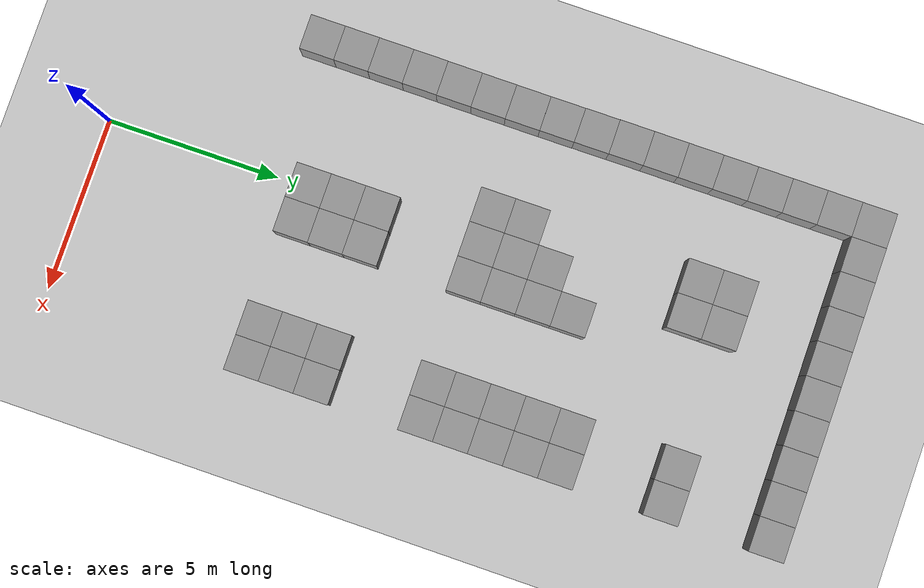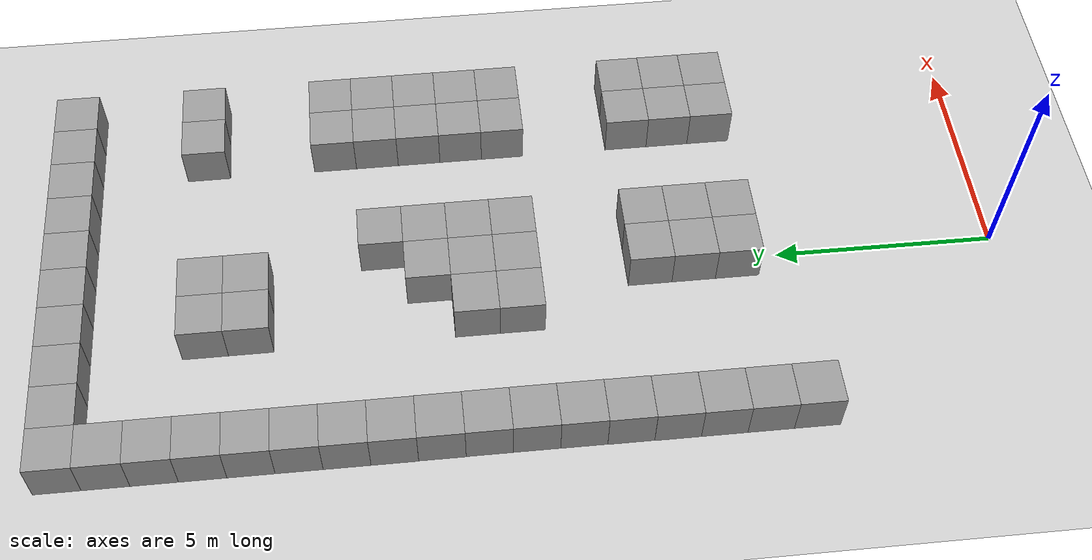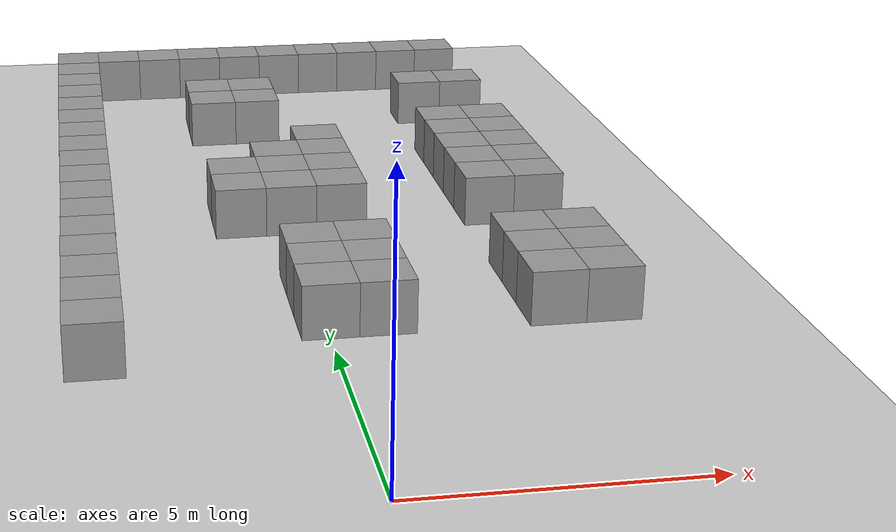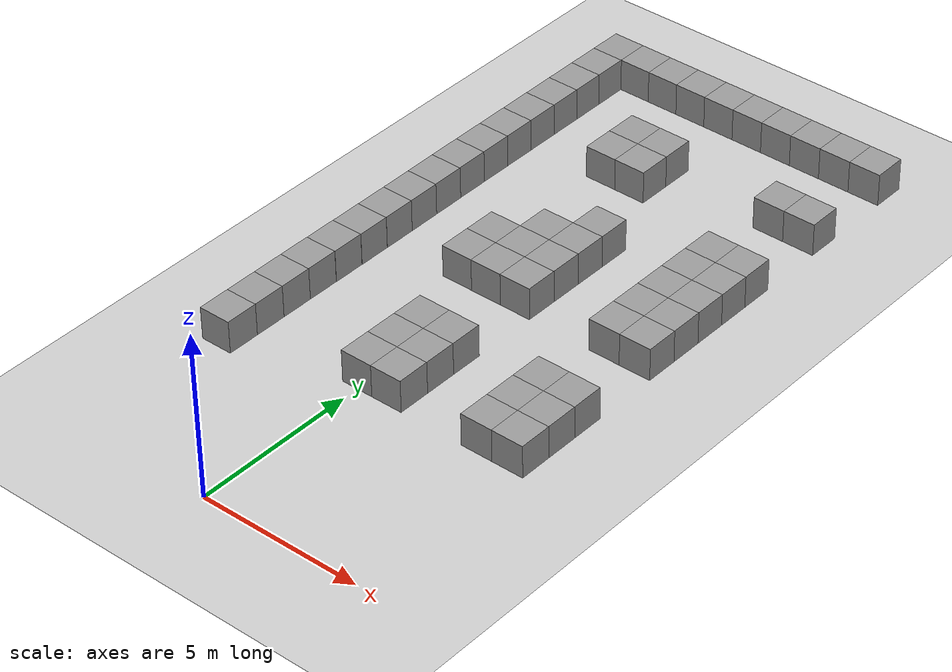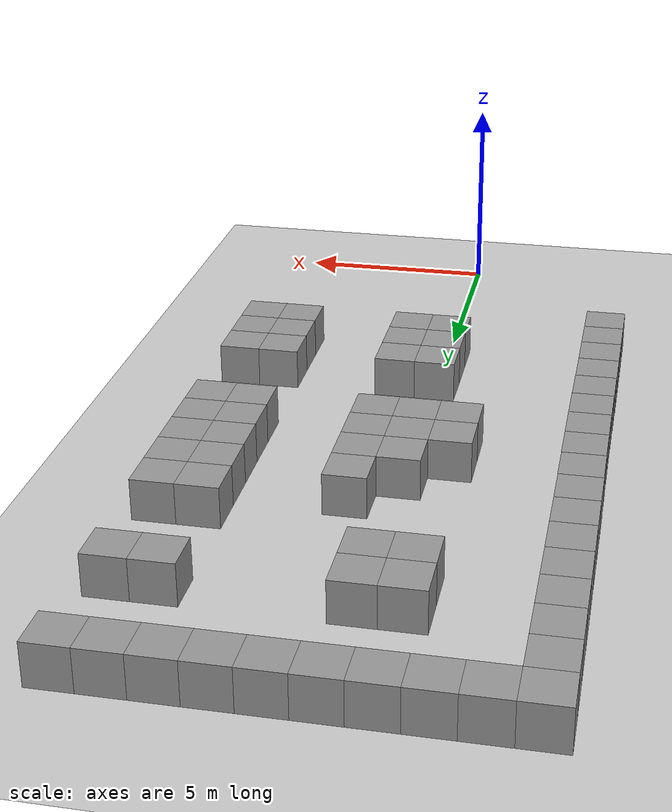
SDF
<sdf version="1.4">
 <world name="default">
  <model name="ground_plane">
   <static>1</static>
   <link name="link">
    <collision name="collision">
     <geometry><plane><normal>0 0 1</normal><size>100 100</size></plane></geometry>
     <surface><friction><ode><mu>100</mu><mu2>50</mu2></ode></friction></surface>
    </collision>
    <visual name="visual">
     <cast_shadows>0</cast_shadows>
     <geometry><plane><normal>0 0 1</normal><size>100 100</size></plane></geometry>
     <material>
      <script><uri>file://media/materials/scripts/gazebo.material</uri><name>Gazebo/Grey</name></script>
     </material>
    </visual>
    <velocity_decay><linear>0</linear><angular>0</angular></velocity_decay>
   </link>
  </model>
  <model name="unit_box_99">
   <pose>-4.00001 21 0.5 0 0 -1e-06</pose>
   <static>1</static>
   <link name="link">
    <inertial>
     <mass>1</mass>
     <inertia><ixx>1</ixx><ixy>0</ixy><ixz>0</ixz><iyy>1</iyy><iyz>0</iyz><izz>1</izz></inertia>
    </inertial>
    <collision name="collision"><geometry><box><size>1 1 1</size></box></geometry></collision>
    <visual name="visual">
     <geometry><box><size>1 1 1</size></box></geometry>
     <material>
      <script><uri>file://media/materials/scripts/gazebo.material</uri><name>Gazebo/Grey</name></script>
     </material>
    </visual>
    <velocity_decay><linear>0</linear><angular>0</angular></velocity_decay>
   </link>
   <static>1</static>
  </model>
  <model name="unit_box_100">
   <pose>-3.00001 21 0.5 0 0 -1e-06</pose>
   <static>1</static>
   <link name="link">
    <inertial>
     <mass>1</mass>
     <inertia><ixx>1</ixx><ixy>0</ixy><ixz>0</ixz><iyy>1</iyy><iyz>0</iyz><izz>1</izz></inertia>
    </inertial>
    <collision name="collision"><geometry><box><size>1 1 1</size></box></geometry></collision>
    <visual name="visual">
     <geometry><box><size>1 1 1</size></box></geometry>
     <material>
      <script><uri>file://media/materials/scripts/gazebo.material</uri><name>Gazebo/Grey</name></script>
     </material>
    </visual>
    <velocity_decay><linear>0</linear><angular>0</angular></velocity_decay>
   </link>
   <static>1</static>
  </model>
  <model name="unit_box_101">
   <pose>-2.00001 21 0.5 0 0 -1e-06</pose>
   <static>1</static>
   <link name="link">
    <inertial>
     <mass>1</mass>
     <inertia><ixx>1</ixx><ixy>0</ixy><ixz>0</ixz><iyy>1</iyy><iyz>0</iyz><izz>1</izz></inertia>
    </inertial>
    <collision name="collision"><geometry><box><size>1 1 1</size></box></geometry></collision>
    <visual name="visual">
     <geometry><box><size>1 1 1</size></box></geometry>
     <material>
      <script><uri>file://media/materials/scripts/gazebo.material</uri><name>Gazebo/Grey</name></script>
     </material>
    </visual>
    <velocity_decay><linear>0</linear><angular>0</angular></velocity_decay>
   </link>
   <static>1</static>
  </model>
  <model name="unit_box_102">
   <pose>-1.00001 21 0.5 0 -0 0</pose>
   <static>1</static>
   <link name="link">
    <inertial>
     <mass>1</mass>
     <inertia><ixx>1</ixx><ixy>0</ixy><ixz>0</ixz><iyy>1</iyy><iyz>0</iyz><izz>1</izz></inertia>
    </inertial>
    <collision name="collision"><geometry><box><size>1 1 1</size></box></geometry></collision>
    <visual name="visual">
     <geometry><box><size>1 1 1</size></box></geometry>
     <material>
      <script><uri>file://media/materials/scripts/gazebo.material</uri><name>Gazebo/Grey</name></script>
     </material>
    </visual>
    <velocity_decay><linear>0</linear><angular>0</angular></velocity_decay>
   </link>
   <static>1</static>
  </model>
  <model name="unit_box_103">
   <pose>-1e-05 21 0.5 0 -0 0</pose>
   <static>1</static>
   <link name="link">
    <inertial>
     <mass>1</mass>
     <inertia><ixx>1</ixx><ixy>0</ixy><ixz>0</ixz><iyy>1</iyy><iyz>0</iyz><izz>1</izz></inertia>
    </inertial>
    <collision name="collision"><geometry><box><size>1 1 1</size></box></geometry></collision>
    <visual name="visual">
     <geometry><box><size>1 1 1</size></box></geometry>
     <material>
      <script><uri>file://media/materials/scripts/gazebo.material</uri><name>Gazebo/Grey</name></script>
     </material>
    </visual>
    <velocity_decay><linear>0</linear><angular>0</angular></velocity_decay>
   </link>
   <static>1</static>
  </model>
  <model name="unit_box_104">
   <pose>0.999991 21 0.5 0 -0 0</pose>
   <static>1</static>
   <link name="link">
    <inertial>
     <mass>1</mass>
     <inertia><ixx>1</ixx><ixy>0</ixy><ixz>0</ixz><iyy>1</iyy><iyz>0</iyz><izz>1</izz></inertia>
    </inertial>
    <collision name="collision"><geometry><box><size>1 1 1</size></box></geometry></collision>
    <visual name="visual">
     <geometry><box><size>1 1 1</size></box></geometry>
     <material>
      <script><uri>file://media/materials/scripts/gazebo.material</uri><name>Gazebo/Grey</name></script>
     </material>
    </visual>
    <velocity_decay><linear>0</linear><angular>0</angular></velocity_decay>
   </link>
   <static>1</static>
  </model>
  <model name="unit_box_105">
   <pose>1.99999 21 0.5 0 -0 0</pose>
   <static>1</static>
   <link name="link">
    <inertial>
     <mass>1</mass>
     <inertia><ixx>1</ixx><ixy>0</ixy><ixz>0</ixz><iyy>1</iyy><iyz>0</iyz><izz>1</izz></inertia>
    </inertial>
    <collision name="collision"><geometry><box><size>1 1 1</size></box></geometry></collision>
    <visual name="visual">
     <geometry><box><size>1 1 1</size></box></geometry>
     <material>
      <script><uri>file://media/materials/scripts/gazebo.material</uri><name>Gazebo/Grey</name></script>
     </material>
    </visual>
    <velocity_decay><linear>0</linear><angular>0</angular></velocity_decay>
   </link>
   <static>1</static>
  </model>
  <model name="unit_box_106">
   <pose>2.99999 21 0.5 0 -0 1e-06</pose>
   <static>1</static>
   <link name="link">
    <inertial>
     <mass>1</mass>
     <inertia><ixx>1</ixx><ixy>0</ixy><ixz>0</ixz><iyy>1</iyy><iyz>0</iyz><izz>1</izz></inertia>
    </inertial>
    <collision name="collision"><geometry><box><size>1 1 1</size></box></geometry></collision>
    <visual name="visual">
     <geometry><box><size>1 1 1</size></box></geometry>
     <material>
      <script><uri>file://media/materials/scripts/gazebo.material</uri><name>Gazebo/Grey</name></script>
     </material>
    </visual>
    <velocity_decay><linear>0</linear><angular>0</angular></velocity_decay>
   </link>
   <static>1</static>
  </model>
  <model name="unit_box_107">
   <pose>3.99999 21 0.5 0 -0 2e-06</pose>
   <static>1</static>
   <link name="link">
    <inertial>
     <mass>1</mass>
     <inertia><ixx>1</ixx><ixy>0</ixy><ixz>0</ixz><iyy>1</iyy><iyz>0</iyz><izz>1</izz></inertia>
    </inertial>
    <collision name="collision"><geometry><box><size>1 1 1</size></box></geometry></collision>
    <visual name="visual">
     <geometry><box><size>1 1 1</size></box></geometry>
     <material>
      <script><uri>file://media/materials/scripts/gazebo.material</uri><name>Gazebo/Grey</name></script>
     </material>
    </visual>
    <velocity_decay><linear>0</linear><angular>0</angular></velocity_decay>
   </link>
   <static>1</static>
  </model>
  <model name="unit_box_108">
   <pose>5 21 0.5 0 -0 3e-06</pose>
   <static>1</static>
   <link name="link">
    <inertial>
     <mass>1</mass>
     <inertia><ixx>1</ixx><ixy>0</ixy><ixz>0</ixz><iyy>1</iyy><iyz>0</iyz><izz>1</izz></inertia>
    </inertial>
    <collision name="collision"><geometry><box><size>1 1 1</size></box></geometry></collision>
    <visual name="visual">
     <geometry><box><size>1 1 1</size></box></geometry>
     <material>
      <script><uri>file://media/materials/scripts/gazebo.material</uri><name>Gazebo/Grey</name></script>
     </material>
    </visual>
    <velocity_decay><linear>0</linear><angular>0</angular></velocity_decay>
   </link>
   <static>1</static>
  </model>
  <model name="unit_box_66_0">
   <pose>-4 5.00001 0.5 0 0 -3e-06</pose>
   <link name="link">
    <inertial>
     <mass>1</mass>
     <inertia><ixx>1</ixx><ixy>0</ixy><ixz>0</ixz><iyy>1</iyy><iyz>0</iyz><izz>1</izz></inertia>
    </inertial>
    <collision name="collision"><geometry><box><size>1 1 1</size></box></geometry></collision>
    <visual name="visual">
     <geometry><box><size>1 1 1</size></box></geometry>
     <material>
      <script><uri>file://media/materials/scripts/gazebo.material</uri><name>Gazebo/Grey</name></script>
     </material>
    </visual>
    <velocity_decay><linear>0</linear><angular>0</angular></velocity_decay>
   </link>
   <static>1</static>
  </model>
  <model name="unit_box_67_0">
   <pose>-3.99999 6.00001 0.5 0 0 -3e-06</pose>
   <link name="link">
    <inertial>
     <mass>1</mass>
     <inertia><ixx>1</ixx><ixy>0</ixy><ixz>0</ixz><iyy>1</iyy><iyz>0</iyz><izz>1</izz></inertia>
    </inertial>
    <collision name="collision"><geometry><box><size>1 1 1</size></box></geometry></collision>
    <visual name="visual">
     <geometry><box><size>1 1 1</size></box></geometry>
     <material>
      <script><uri>file://media/materials/scripts/gazebo.material</uri><name>Gazebo/Grey</name></script>
     </material>
    </visual>
    <velocity_decay><linear>0</linear><angular>0</angular></velocity_decay>
   </link>
   <static>1</static>
  </model>
  <model name="unit_box_68_0">
   <pose>-4 7.00001 0.5 0 0 -2e-06</pose>
   <link name="link">
    <inertial>
     <mass>1</mass>
     <inertia><ixx>1</ixx><ixy>0</ixy><ixz>0</ixz><iyy>1</iyy><iyz>0</iyz><izz>1</izz></inertia>
    </inertial>
    <collision name="collision"><geometry><box><size>1 1 1</size></box></geometry></collision>
    <visual name="visual">
     <geometry><box><size>1 1 1</size></box></geometry>
     <material>
      <script><uri>file://media/materials/scripts/gazebo.material</uri><name>Gazebo/Grey</name></script>
     </material>
    </visual>
    <velocity_decay><linear>0</linear><angular>0</angular></velocity_decay>
   </link>
   <static>1</static>
  </model>
  <model name="unit_box_69_0">
   <pose>-4 8.00001 0.5 0 0 -2e-06</pose>
   <link name="link">
    <inertial>
     <mass>1</mass>
     <inertia><ixx>1</ixx><ixy>0</ixy><ixz>0</ixz><iyy>1</iyy><iyz>0</iyz><izz>1</izz></inertia>
    </inertial>
    <collision name="collision"><geometry><box><size>1 1 1</size></box></geometry></collision>
    <visual name="visual">
     <geometry><box><size>1 1 1</size></box></geometry>
     <material>
      <script><uri>file://media/materials/scripts/gazebo.material</uri><name>Gazebo/Grey</name></script>
     </material>
    </visual>
    <velocity_decay><linear>0</linear><angular>0</angular></velocity_decay>
   </link>
   <static>1</static>
  </model>
  <model name="unit_box_73_0">
   <pose>-3.99993 14 0.5 0 0 -2e-06</pose>
   <link name="link">
    <inertial>
     <mass>1</mass>
     <inertia><ixx>1</ixx><ixy>0</ixy><ixz>0</ixz><iyy>1</iyy><iyz>0</iyz><izz>1</izz></inertia>
    </inertial>
    <collision name="collision"><geometry><box><size>1 1 1</size></box></geometry></collision>
    <visual name="visual">
     <geometry><box><size>1 1 1</size></box></geometry>
     <material>
      <script><uri>file://media/materials/scripts/gazebo.material</uri><name>Gazebo/Grey</name></script>
     </material>
    </visual>
    <velocity_decay><linear>0</linear><angular>0</angular></velocity_decay>
   </link>
   <static>1</static>
  </model>
  <model name="unit_box_74_0">
   <pose>-3.99993 15 0.5 0 0 -4e-06</pose>
   <link name="link">
    <inertial>
     <mass>1</mass>
     <inertia><ixx>1</ixx><ixy>0</ixy><ixz>0</ixz><iyy>1</iyy><iyz>0</iyz><izz>1</izz></inertia>
    </inertial>
    <collision name="collision"><geometry><box><size>1 1 1</size></box></geometry></collision>
    <visual name="visual">
     <geometry><box><size>1 1 1</size></box></geometry>
     <material>
      <script><uri>file://media/materials/scripts/gazebo.material</uri><name>Gazebo/Grey</name></script>
     </material>
    </visual>
    <velocity_decay><linear>0</linear><angular>0</angular></velocity_decay>
   </link>
   <static>1</static>
  </model>
  <model name="unit_box_75_0">
   <pose>-3.99999 16 0.5 0 0 -3e-06</pose>
   <link name="link">
    <inertial>
     <mass>1</mass>
     <inertia><ixx>1</ixx><ixy>0</ixy><ixz>0</ixz><iyy>1</iyy><iyz>0</iyz><izz>1</izz></inertia>
    </inertial>
    <collision name="collision"><geometry><box><size>1 1 1</size></box></geometry></collision>
    <visual name="visual">
     <geometry><box><size>1 1 1</size></box></geometry>
     <material>
      <script><uri>file://media/materials/scripts/gazebo.material</uri><name>Gazebo/Grey</name></script>
     </material>
    </visual>
    <velocity_decay><linear>0</linear><angular>0</angular></velocity_decay>
   </link>
   <static>1</static>
  </model>
  <model name="unit_box_76_0">
   <pose>-3.99995 17 0.5 0 0 -4e-06</pose>
   <link name="link">
    <inertial>
     <mass>1</mass>
     <inertia><ixx>1</ixx><ixy>0</ixy><ixz>0</ixz><iyy>1</iyy><iyz>0</iyz><izz>1</izz></inertia>
    </inertial>
    <collision name="collision"><geometry><box><size>1 1 1</size></box></geometry></collision>
    <visual name="visual">
     <geometry><box><size>1 1 1</size></box></geometry>
     <material>
      <script><uri>file://media/materials/scripts/gazebo.material</uri><name>Gazebo/Grey</name></script>
     </material>
    </visual>
    <velocity_decay><linear>0</linear><angular>0</angular></velocity_decay>
   </link>
   <static>1</static>
  </model>
  <model name="unit_box_77_0">
   <pose>-3.99995 18 0.5 0 0 -4e-06</pose>
   <link name="link">
    <inertial>
     <mass>1</mass>
     <inertia><ixx>1</ixx><ixy>0</ixy><ixz>0</ixz><iyy>1</iyy><iyz>0</iyz><izz>1</izz></inertia>
    </inertial>
    <collision name="collision"><geometry><box><size>1 1 1</size></box></geometry></collision>
    <visual name="visual">
     <geometry><box><size>1 1 1</size></box></geometry>
     <material>
      <script><uri>file://media/materials/scripts/gazebo.material</uri><name>Gazebo/Grey</name></script>
     </material>
    </visual>
    <velocity_decay><linear>0</linear><angular>0</angular></velocity_decay>
   </link>
   <static>1</static>
  </model>
  <model name="unit_box_78_0">
   <pose>-3.99992 19 0.5 0 0 -4e-06</pose>
   <link name="link">
    <inertial>
     <mass>1</mass>
     <inertia><ixx>1</ixx><ixy>0</ixy><ixz>0</ixz><iyy>1</iyy><iyz>0</iyz><izz>1</izz></inertia>
    </inertial>
    <collision name="collision"><geometry><box><size>1 1 1</size></box></geometry></collision>
    <visual name="visual">
     <geometry><box><size>1 1 1</size></box></geometry>
     <material>
      <script><uri>file://media/materials/scripts/gazebo.material</uri><name>Gazebo/Grey</name></script>
     </material>
    </visual>
    <velocity_decay><linear>0</linear><angular>0</angular></velocity_decay>
   </link>
   <static>1</static>
  </model>
  <model name="unit_box_79_0">
   <pose>-3.99997 20 0.5 0 0 -1e-06</pose>
   <link name="link">
    <inertial>
     <mass>1</mass>
     <inertia><ixx>1</ixx><ixy>0</ixy><ixz>0</ixz><iyy>1</iyy><iyz>0</iyz><izz>1</izz></inertia>
    </inertial>
    <collision name="collision"><geometry><box><size>1 1 1</size></box></geometry></collision>
    <visual name="visual">
     <geometry><box><size>1 1 1</size></box></geometry>
     <material>
      <script><uri>file://media/materials/scripts/gazebo.material</uri><name>Gazebo/Grey</name></script>
     </material>
    </visual>
    <velocity_decay><linear>0</linear><angular>0</angular></velocity_decay>
   </link>
   <static>1</static>
  </model>
  <model name="unit_box_87_0">
   <pose>-0.999998 11 0.5 0 -0 2e-06</pose>
   <link name="link">
    <inertial>
     <mass>1</mass>
     <inertia><ixx>1</ixx><ixy>0</ixy><ixz>0</ixz><iyy>1</iyy><iyz>0</iyz><izz>1</izz></inertia>
    </inertial>
    <collision name="collision"><geometry><box><size>1 1 1</size></box></geometry></collision>
    <visual name="visual">
     <geometry><box><size>1 1 1</size></box></geometry>
     <material>
      <script><uri>file://media/materials/scripts/gazebo.material</uri><name>Gazebo/Grey</name></script>
     </material>
    </visual>
    <velocity_decay><linear>0</linear><angular>0</angular></velocity_decay>
   </link>
   <static>1</static>
  </model>
  <model name="unit_box_88_0">
   <pose>9e-06 11 0.5 0 -0 5e-06</pose>
   <link name="link">
    <inertial>
     <mass>1</mass>
     <inertia><ixx>1</ixx><ixy>0</ixy><ixz>0</ixz><iyy>1</iyy><iyz>0</iyz><izz>1</izz></inertia>
    </inertial>
    <collision name="collision"><geometry><box><size>1 1 1</size></box></geometry></collision>
    <visual name="visual">
     <geometry><box><size>1 1 1</size></box></geometry>
     <material>
      <script><uri>file://media/materials/scripts/gazebo.material</uri><name>Gazebo/Grey</name></script>
     </material>
    </visual>
    <velocity_decay><linear>0</linear><angular>0</angular></velocity_decay>
   </link>
   <static>1</static>
  </model>
  <model name="unit_box_89_0">
   <pose>1.00001 11 0.5 0 -0 5e-06</pose>
   <link name="link">
    <inertial>
     <mass>1</mass>
     <inertia><ixx>1</ixx><ixy>0</ixy><ixz>0</ixz><iyy>1</iyy><iyz>0</iyz><izz>1</izz></inertia>
    </inertial>
    <collision name="collision"><geometry><box><size>1 1 1</size></box></geometry></collision>
    <visual name="visual">
     <geometry><box><size>1 1 1</size></box></geometry>
     <material>
      <script><uri>file://media/materials/scripts/gazebo.material</uri><name>Gazebo/Grey</name></script>
     </material>
    </visual>
    <velocity_decay><linear>0</linear><angular>0</angular></velocity_decay>
   </link>
   <static>1</static>
  </model>
  <model name="unit_box_97_0">
   <pose>1 6.00001 0.5 0 0 -1e-06</pose>
   <link name="link">
    <inertial>
     <mass>1</mass>
     <inertia><ixx>1</ixx><ixy>0</ixy><ixz>0</ixz><iyy>1</iyy><iyz>0</iyz><izz>1</izz></inertia>
    </inertial>
    <collision name="collision"><geometry><box><size>1 1 1</size></box></geometry></collision>
    <visual name="visual">
     <geometry><box><size>1 1 1</size></box></geometry>
     <material>
      <script><uri>file://media/materials/scripts/gazebo.material</uri><name>Gazebo/Grey</name></script>
     </material>
    </visual>
    <velocity_decay><linear>0</linear><angular>0</angular></velocity_decay>
   </link>
   <static>1</static>
  </model>
  <model name="unit_box_98_0">
   <pose>1 7.00001 0.5 0 -0 1e-06</pose>
   <link name="link">
    <inertial>
     <mass>1</mass>
     <inertia><ixx>1</ixx><ixy>0</ixy><ixz>0</ixz><iyy>1</iyy><iyz>0</iyz><izz>1</izz></inertia>
    </inertial>
    <collision name="collision"><geometry><box><size>1 1 1</size></box></geometry></collision>
    <visual name="visual">
     <geometry><box><size>1 1 1</size></box></geometry>
     <material>
      <script><uri>file://media/materials/scripts/gazebo.material</uri><name>Gazebo/Grey</name></script>
     </material>
    </visual>
    <velocity_decay><linear>0</linear><angular>0</angular></velocity_decay>
   </link>
   <static>1</static>
  </model>
  <model name="unit_box_99_0">
   <pose>1 8.00001 0.5 0 -0 0</pose>
   <link name="link">
    <inertial>
     <mass>1</mass>
     <inertia><ixx>1</ixx><ixy>0</ixy><ixz>0</ixz><iyy>1</iyy><iyz>0</iyz><izz>1</izz></inertia>
    </inertial>
    <collision name="collision"><geometry><box><size>1 1 1</size></box></geometry></collision>
    <visual name="visual">
     <geometry><box><size>1 1 1</size></box></geometry>
     <material>
      <script><uri>file://media/materials/scripts/gazebo.material</uri><name>Gazebo/Grey</name></script>
     </material>
    </visual>
    <velocity_decay><linear>0</linear><angular>0</angular></velocity_decay>
   </link>
   <static>1</static>
  </model>
  <model name="unit_box_100_0">
   <pose>1.00001 12 0.5 0 -0 3e-06</pose>
   <link name="link">
    <inertial>
     <mass>1</mass>
     <inertia><ixx>1</ixx><ixy>0</ixy><ixz>0</ixz><iyy>1</iyy><iyz>0</iyz><izz>1</izz></inertia>
    </inertial>
    <collision name="collision"><geometry><box><size>1 1 1</size></box></geometry></collision>
    <visual name="visual">
     <geometry><box><size>1 1 1</size></box></geometry>
     <material>
      <script><uri>file://media/materials/scripts/gazebo.material</uri><name>Gazebo/Grey</name></script>
     </material>
    </visual>
    <velocity_decay><linear>0</linear><angular>0</angular></velocity_decay>
   </link>
   <static>1</static>
  </model>
  <model name="unit_box_101_0">
   <pose>1.00001 13 0.5 0 -0 4e-06</pose>
   <link name="link">
    <inertial>
     <mass>1</mass>
     <inertia><ixx>1</ixx><ixy>0</ixy><ixz>0</ixz><iyy>1</iyy><iyz>0</iyz><izz>1</izz></inertia>
    </inertial>
    <collision name="collision"><geometry><box><size>1 1 1</size></box></geometry></collision>
    <visual name="visual">
     <geometry><box><size>1 1 1</size></box></geometry>
     <material>
      <script><uri>file://media/materials/scripts/gazebo.material</uri><name>Gazebo/Grey</name></script>
     </material>
    </visual>
    <velocity_decay><linear>0</linear><angular>0</angular></velocity_decay>
   </link>
   <static>1</static>
  </model>
  <model name="unit_box_102_0">
   <pose>0.999998 14 0.5 0 -0 2e-06</pose>
   <link name="link">
    <inertial>
     <mass>1</mass>
     <inertia><ixx>1</ixx><ixy>0</ixy><ixz>0</ixz><iyy>1</iyy><iyz>0</iyz><izz>1</izz></inertia>
    </inertial>
    <collision name="collision"><geometry><box><size>1 1 1</size></box></geometry></collision>
    <visual name="visual">
     <geometry><box><size>1 1 1</size></box></geometry>
     <material>
      <script><uri>file://media/materials/scripts/gazebo.material</uri><name>Gazebo/Grey</name></script>
     </material>
    </visual>
    <velocity_decay><linear>0</linear><angular>0</angular></velocity_decay>
   </link>
   <static>1</static>
  </model>
  <model name="unit_box_124_0">
   <pose>1e-06 6 0.5 0 0 -1e-06</pose>
   <link name="link">
    <inertial>
     <mass>1</mass>
     <inertia><ixx>1</ixx><ixy>0</ixy><ixz>0</ixz><iyy>1</iyy><iyz>0</iyz><izz>1</izz></inertia>
    </inertial>
    <collision name="collision"><geometry><box><size>1 1 1</size></box></geometry></collision>
    <visual name="visual">
     <geometry><box><size>1 1 1</size></box></geometry>
     <material>
      <script><uri>file://media/materials/scripts/gazebo.material</uri><name>Gazebo/Grey</name></script>
     </material>
    </visual>
    <velocity_decay><linear>0</linear><angular>0</angular></velocity_decay>
   </link>
   <static>1</static>
  </model>
  <model name="unit_box_125_0">
   <pose>-4e-06 7 0.5 0 0 -2e-06</pose>
   <link name="link">
    <inertial>
     <mass>1</mass>
     <inertia><ixx>1</ixx><ixy>0</ixy><ixz>0</ixz><iyy>1</iyy><iyz>0</iyz><izz>1</izz></inertia>
    </inertial>
    <collision name="collision"><geometry><box><size>1 1 1</size></box></geometry></collision>
    <visual name="visual">
     <geometry><box><size>1 1 1</size></box></geometry>
     <material>
      <script><uri>file://media/materials/scripts/gazebo.material</uri><name>Gazebo/Grey</name></script>
     </material>
    </visual>
    <velocity_decay><linear>0</linear><angular>0</angular></velocity_decay>
   </link>
   <static>1</static>
  </model>
  <model name="unit_box_126_0">
   <pose>-1e-06 8 0.5 0 0 -2e-06</pose>
   <link name="link">
    <inertial>
     <mass>1</mass>
     <inertia><ixx>1</ixx><ixy>0</ixy><ixz>0</ixz><iyy>1</iyy><iyz>0</iyz><izz>1</izz></inertia>
    </inertial>
    <collision name="collision"><geometry><box><size>1 1 1</size></box></geometry></collision>
    <visual name="visual">
     <geometry><box><size>1 1 1</size></box></geometry>
     <material>
      <script><uri>file://media/materials/scripts/gazebo.material</uri><name>Gazebo/Grey</name></script>
     </material>
    </visual>
    <velocity_decay><linear>0</linear><angular>0</angular></velocity_decay>
   </link>
   <static>1</static>
  </model>
  <model name="unit_box_201_0">
   <pose>4 8.00002 0.5 0 0 -2e-06</pose>
   <link name="link">
    <inertial>
     <mass>1</mass>
     <inertia><ixx>1</ixx><ixy>0</ixy><ixz>0</ixz><iyy>1</iyy><iyz>0</iyz><izz>1</izz></inertia>
    </inertial>
    <collision name="collision"><geometry><box><size>1 1 1</size></box></geometry></collision>
    <visual name="visual">
     <geometry><box><size>1 1 1</size></box></geometry>
     <material>
      <script><uri>file://media/materials/scripts/gazebo.material</uri><name>Gazebo/Grey</name></script>
     </material>
    </visual>
    <velocity_decay><linear>0</linear><angular>0</angular></velocity_decay>
   </link>
   <static>1</static>
  </model>
  <model name="unit_box_202_0">
   <pose>4 7 0.5 0 -0 0</pose>
   <link name="link">
    <inertial>
     <mass>1</mass>
     <inertia><ixx>1</ixx><ixy>0</ixy><ixz>0</ixz><iyy>1</iyy><iyz>0</iyz><izz>1</izz></inertia>
    </inertial>
    <collision name="collision"><geometry><box><size>1 1 1</size></box></geometry></collision>
    <visual name="visual">
     <geometry><box><size>1 1 1</size></box></geometry>
     <material>
      <script><uri>file://media/materials/scripts/gazebo.material</uri><name>Gazebo/Grey</name></script>
     </material>
    </visual>
    <velocity_decay><linear>0</linear><angular>0</angular></velocity_decay>
   </link>
   <static>1</static>
  </model>
  <model name="unit_box_204_0">
   <pose>3.99999 6 0.5 0 -0 0</pose>
   <link name="link">
    <inertial>
     <mass>1</mass>
     <inertia><ixx>1</ixx><ixy>0</ixy><ixz>0</ixz><iyy>1</iyy><iyz>0</iyz><izz>1</izz></inertia>
    </inertial>
    <collision name="collision"><geometry><box><size>1 1 1</size></box></geometry></collision>
    <visual name="visual">
     <geometry><box><size>1 1 1</size></box></geometry>
     <material>
      <script><uri>file://media/materials/scripts/gazebo.material</uri><name>Gazebo/Grey</name></script>
     </material>
    </visual>
    <velocity_decay><linear>0</linear><angular>0</angular></velocity_decay>
   </link>
   <static>1</static>
  </model>
  <model name="unit_box_220_0">
   <pose>5 6 0.5 0 -0 1e-06</pose>
   <link name="link">
    <inertial>
     <mass>1</mass>
     <inertia><ixx>1</ixx><ixy>0</ixy><ixz>0</ixz><iyy>1</iyy><iyz>0</iyz><izz>1</izz></inertia>
    </inertial>
    <collision name="collision"><geometry><box><size>1 1 1</size></box></geometry></collision>
    <visual name="visual">
     <geometry><box><size>1 1 1</size></box></geometry>
     <material>
      <script><uri>file://media/materials/scripts/gazebo.material</uri><name>Gazebo/Grey</name></script>
     </material>
    </visual>
    <velocity_decay><linear>0</linear><angular>0</angular></velocity_decay>
   </link>
   <static>1</static>
  </model>
  <model name="unit_box_221_0">
   <pose>5 7 0.5 0 -0 1e-06</pose>
   <link name="link">
    <inertial>
     <mass>1</mass>
     <inertia><ixx>1</ixx><ixy>0</ixy><ixz>0</ixz><iyy>1</iyy><iyz>0</iyz><izz>1</izz></inertia>
    </inertial>
    <collision name="collision"><geometry><box><size>1 1 1</size></box></geometry></collision>
    <visual name="visual">
     <geometry><box><size>1 1 1</size></box></geometry>
     <material>
      <script><uri>file://media/materials/scripts/gazebo.material</uri><name>Gazebo/Grey</name></script>
     </material>
    </visual>
    <velocity_decay><linear>0</linear><angular>0</angular></velocity_decay>
   </link>
   <static>1</static>
  </model>
  <model name="unit_box_233_0">
   <pose>5 8 0.5 0 -0 2e-06</pose>
   <link name="link">
    <inertial>
     <mass>1</mass>
     <inertia><ixx>1</ixx><ixy>0</ixy><ixz>0</ixz><iyy>1</iyy><iyz>0</iyz><izz>1</izz></inertia>
    </inertial>
    <collision name="collision"><geometry><box><size>1 1 1</size></box></geometry></collision>
    <visual name="visual">
     <geometry><box><size>1 1 1</size></box></geometry>
     <material>
      <script><uri>file://media/materials/scripts/gazebo.material</uri><name>Gazebo/Grey</name></script>
     </material>
    </visual>
    <velocity_decay><linear>0</linear><angular>0</angular></velocity_decay>
   </link>
   <static>1</static>
  </model>
  <model name="unit_box_311">
   <pose>4 11 0.5 0 -0 3e-06</pose>
   <link name="link">
    <inertial>
     <mass>1</mass>
     <inertia><ixx>1</ixx><ixy>0</ixy><ixz>0</ixz><iyy>1</iyy><iyz>0</iyz><izz>1</izz></inertia>
    </inertial>
    <collision name="collision"><geometry><box><size>1 1 1</size></box></geometry></collision>
    <visual name="visual">
     <geometry><box><size>1 1 1</size></box></geometry>
     <material>
      <script><uri>file://media/materials/scripts/gazebo.material</uri><name>Gazebo/Grey</name></script>
     </material>
    </visual>
    <velocity_decay><linear>0</linear><angular>0</angular></velocity_decay>
   </link>
   <static>1</static>
  </model>
  <model name="unit_box_312">
   <pose>4 12 0.5 0 -0 3e-06</pose>
   <link name="link">
    <inertial>
     <mass>1</mass>
     <inertia><ixx>1</ixx><ixy>0</ixy><ixz>0</ixz><iyy>1</iyy><iyz>0</iyz><izz>1</izz></inertia>
    </inertial>
    <collision name="collision"><geometry><box><size>1 1 1</size></box></geometry></collision>
    <visual name="visual">
     <geometry><box><size>1 1 1</size></box></geometry>
     <material>
      <script><uri>file://media/materials/scripts/gazebo.material</uri><name>Gazebo/Grey</name></script>
     </material>
    </visual>
    <velocity_decay><linear>0</linear><angular>0</angular></velocity_decay>
   </link>
   <static>1</static>
  </model>
  <model name="unit_box_313">
   <pose>3.99999 13 0.5 0 -0 2e-06</pose>
   <link name="link">
    <inertial>
     <mass>1</mass>
     <inertia><ixx>1</ixx><ixy>0</ixy><ixz>0</ixz><iyy>1</iyy><iyz>0</iyz><izz>1</izz></inertia>
    </inertial>
    <collision name="collision"><geometry><box><size>1 1 1</size></box></geometry></collision>
    <visual name="visual">
     <geometry><box><size>1 1 1</size></box></geometry>
     <material>
      <script><uri>file://media/materials/scripts/gazebo.material</uri><name>Gazebo/Grey</name></script>
     </material>
    </visual>
    <velocity_decay><linear>0</linear><angular>0</angular></velocity_decay>
   </link>
   <static>1</static>
  </model>
  <model name="unit_box_314">
   <pose>4 14 0.5 0 -0 2e-06</pose>
   <link name="link">
    <inertial>
     <mass>1</mass>
     <inertia><ixx>1</ixx><ixy>0</ixy><ixz>0</ixz><iyy>1</iyy><iyz>0</iyz><izz>1</izz></inertia>
    </inertial>
    <collision name="collision"><geometry><box><size>1 1 1</size></box></geometry></collision>
    <visual name="visual">
     <geometry><box><size>1 1 1</size></box></geometry>
     <material>
      <script><uri>file://media/materials/scripts/gazebo.material</uri><name>Gazebo/Grey</name></script>
     </material>
    </visual>
    <velocity_decay><linear>0</linear><angular>0</angular></velocity_decay>
   </link>
   <static>1</static>
  </model>
  <model name="unit_box_315">
   <pose>5 11 0.5 0 -0 3e-06</pose>
   <link name="link">
    <inertial>
     <mass>1</mass>
     <inertia><ixx>1</ixx><ixy>0</ixy><ixz>0</ixz><iyy>1</iyy><iyz>0</iyz><izz>1</izz></inertia>
    </inertial>
    <collision name="collision"><geometry><box><size>1 1 1</size></box></geometry></collision>
    <visual name="visual">
     <geometry><box><size>1 1 1</size></box></geometry>
     <material>
      <script><uri>file://media/materials/scripts/gazebo.material</uri><name>Gazebo/Grey</name></script>
     </material>
    </visual>
    <velocity_decay><linear>0</linear><angular>0</angular></velocity_decay>
   </link>
   <static>1</static>
  </model>
  <model name="unit_box_316">
   <pose>5 12 0.5 0 -0 3e-06</pose>
   <link name="link">
    <inertial>
     <mass>1</mass>
     <inertia><ixx>1</ixx><ixy>0</ixy><ixz>0</ixz><iyy>1</iyy><iyz>0</iyz><izz>1</izz></inertia>
    </inertial>
    <collision name="collision"><geometry><box><size>1 1 1</size></box></geometry></collision>
    <visual name="visual">
     <geometry><box><size>1 1 1</size></box></geometry>
     <material>
      <script><uri>file://media/materials/scripts/gazebo.material</uri><name>Gazebo/Grey</name></script>
     </material>
    </visual>
    <velocity_decay><linear>0</linear><angular>0</angular></velocity_decay>
   </link>
   <static>1</static>
  </model>
  <model name="unit_box_317">
   <pose>5 13 0.5 0 -0 5e-06</pose>
   <link name="link">
    <inertial>
     <mass>1</mass>
     <inertia><ixx>1</ixx><ixy>0</ixy><ixz>0</ixz><iyy>1</iyy><iyz>0</iyz><izz>1</izz></inertia>
    </inertial>
    <collision name="collision"><geometry><box><size>1 1 1</size></box></geometry></collision>
    <visual name="visual">
     <geometry><box><size>1 1 1</size></box></geometry>
     <material>
      <script><uri>file://media/materials/scripts/gazebo.material</uri><name>Gazebo/Grey</name></script>
     </material>
    </visual>
    <velocity_decay><linear>0</linear><angular>0</angular></velocity_decay>
   </link>
   <static>1</static>
  </model>
  <model name="unit_box_318">
   <pose>5 14 0.5 0 -0 4e-06</pose>
   <link name="link">
    <inertial>
     <mass>1</mass>
     <inertia><ixx>1</ixx><ixy>0</ixy><ixz>0</ixz><iyy>1</iyy><iyz>0</iyz><izz>1</izz></inertia>
    </inertial>
    <collision name="collision"><geometry><box><size>1 1 1</size></box></geometry></collision>
    <visual name="visual">
     <geometry><box><size>1 1 1</size></box></geometry>
     <material>
      <script><uri>file://media/materials/scripts/gazebo.material</uri><name>Gazebo/Grey</name></script>
     </material>
    </visual>
    <velocity_decay><linear>0</linear><angular>0</angular></velocity_decay>
   </link>
   <static>1</static>
  </model>
  <model name="unit_box_325">
   <pose>3.99999 18 0.5 0 0 -3e-06</pose>
   <link name="link">
    <inertial>
     <mass>1</mass>
     <inertia><ixx>1</ixx><ixy>0</ixy><ixz>0</ixz><iyy>1</iyy><iyz>0</iyz><izz>1</izz></inertia>
    </inertial>
    <collision name="collision"><geometry><box><size>1 1 1</size></box></geometry></collision>
    <visual name="visual">
     <geometry><box><size>1 1 1</size></box></geometry>
     <material>
      <script><uri>file://media/materials/scripts/gazebo.material</uri><name>Gazebo/Grey</name></script>
     </material>
    </visual>
    <velocity_decay><linear>0</linear><angular>0</angular></velocity_decay>
   </link>
   <static>1</static>
  </model>
  <model name="unit_box_326">
   <pose>4 15 0.5 0 -0 0</pose>
   <link name="link">
    <inertial>
     <mass>1</mass>
     <inertia><ixx>1</ixx><ixy>0</ixy><ixz>0</ixz><iyy>1</iyy><iyz>0</iyz><izz>1</izz></inertia>
    </inertial>
    <collision name="collision"><geometry><box><size>1 1 1</size></box></geometry></collision>
    <visual name="visual">
     <geometry><box><size>1 1 1</size></box></geometry>
     <material>
      <script><uri>file://media/materials/scripts/gazebo.material</uri><name>Gazebo/Grey</name></script>
     </material>
    </visual>
    <velocity_decay><linear>0</linear><angular>0</angular></velocity_decay>
   </link>
   <static>1</static>
  </model>
  <model name="unit_box_327">
   <pose>5 15 0.5 0 -0 3e-06</pose>
   <link name="link">
    <inertial>
     <mass>1</mass>
     <inertia><ixx>1</ixx><ixy>0</ixy><ixz>0</ixz><iyy>1</iyy><iyz>0</iyz><izz>1</izz></inertia>
    </inertial>
    <collision name="collision"><geometry><box><size>1 1 1</size></box></geometry></collision>
    <visual name="visual">
     <geometry><box><size>1 1 1</size></box></geometry>
     <material>
      <script><uri>file://media/materials/scripts/gazebo.material</uri><name>Gazebo/Grey</name></script>
     </material>
    </visual>
    <velocity_decay><linear>0</linear><angular>0</angular></velocity_decay>
   </link>
   <static>1</static>
  </model>
  <model name="unit_box_329">
   <pose>4.99999 18 0.5 0 -0 1e-06</pose>
   <link name="link">
    <inertial>
     <mass>1</mass>
     <inertia><ixx>1</ixx><ixy>0</ixy><ixz>0</ixz><iyy>1</iyy><iyz>0</iyz><izz>1</izz></inertia>
    </inertial>
    <collision name="collision"><geometry><box><size>1 1 1</size></box></geometry></collision>
    <visual name="visual">
     <geometry><box><size>1 1 1</size></box></geometry>
     <material>
      <script><uri>file://media/materials/scripts/gazebo.material</uri><name>Gazebo/Grey</name></script>
     </material>
    </visual>
    <velocity_decay><linear>0</linear><angular>0</angular></velocity_decay>
   </link>
   <static>1</static>
  </model>
  <model name="unit_box_407">
   <pose>-0.999996 12 0.5 0 -0 0</pose>
   <link name="link">
    <inertial>
     <mass>1</mass>
     <inertia><ixx>1</ixx><ixy>0</ixy><ixz>0</ixz><iyy>1</iyy><iyz>0</iyz><izz>1</izz></inertia>
    </inertial>
    <collision name="collision"><geometry><box><size>1 1 1</size></box></geometry></collision>
    <visual name="visual">
     <geometry><box><size>1 1 1</size></box></geometry>
     <material>
      <script><uri>file://media/materials/scripts/gazebo.material</uri><name>Gazebo/Grey</name></script>
     </material>
    </visual>
    <velocity_decay><linear>0</linear><angular>0</angular></velocity_decay>
   </link>
   <static>1</static>
  </model>
  <model name="unit_box_408">
   <pose>5e-06 12 0.5 0 -0 2e-06</pose>
   <link name="link">
    <inertial>
     <mass>1</mass>
     <inertia><ixx>1</ixx><ixy>0</ixy><ixz>0</ixz><iyy>1</iyy><iyz>0</iyz><izz>1</izz></inertia>
    </inertial>
    <collision name="collision"><geometry><box><size>1 1 1</size></box></geometry></collision>
    <visual name="visual">
     <geometry><box><size>1 1 1</size></box></geometry>
     <material>
      <script><uri>file://media/materials/scripts/gazebo.material</uri><name>Gazebo/Grey</name></script>
     </material>
    </visual>
    <velocity_decay><linear>0</linear><angular>0</angular></velocity_decay>
   </link>
   <static>1</static>
  </model>
  <model name="unit_box_3">
   <pose>-3.99419 9.00001 0.5 1e-06 3e-06 -1e-05</pose>
   <link name="link">
    <inertial>
     <mass>1</mass>
     <inertia><ixx>1</ixx><ixy>0</ixy><ixz>0</ixz><iyy>1</iyy><iyz>0</iyz><izz>1</izz></inertia>
    </inertial>
    <collision name="collision"><geometry><box><size>1 1 1</size></box></geometry></collision>
    <visual name="visual">
     <geometry><box><size>1 1 1</size></box></geometry>
     <material>
      <script><uri>file://media/materials/scripts/gazebo.material</uri><name>Gazebo/Grey</name></script>
     </material>
    </visual>
    <velocity_decay><linear>0</linear><angular>0</angular></velocity_decay>
   </link>
   <static>1</static>
  </model>
  <model name="unit_box_4">
   <pose>-3.98889 10 0.5 0 -0 0</pose>
   <link name="link">
    <inertial>
     <mass>1</mass>
     <inertia><ixx>1</ixx><ixy>0</ixy><ixz>0</ixz><iyy>1</iyy><iyz>0</iyz><izz>1</izz></inertia>
    </inertial>
    <collision name="collision"><geometry><box><size>1 1 1</size></box></geometry></collision>
    <visual name="visual">
     <geometry><box><size>1 1 1</size></box></geometry>
     <material>
      <script><uri>file://media/materials/scripts/gazebo.material</uri><name>Gazebo/Grey</name></script>
     </material>
    </visual>
    <velocity_decay><linear>0</linear><angular>0</angular></velocity_decay>
   </link>
   <static>1</static>
  </model>
  <model name="unit_box_5">
   <pose>-3.98704 11 0.500007 -1e-06 1e-05 3e-06</pose>
   <link name="link">
    <inertial>
     <mass>1</mass>
     <inertia><ixx>1</ixx><ixy>0</ixy><ixz>0</ixz><iyy>1</iyy><iyz>0</iyz><izz>1</izz></inertia>
    </inertial>
    <collision name="collision"><geometry><box><size>1 1 1</size></box></geometry></collision>
    <visual name="visual">
     <geometry><box><size>1 1 1</size></box></geometry>
     <material>
      <script><uri>file://media/materials/scripts/gazebo.material</uri><name>Gazebo/Grey</name></script>
     </material>
    </visual>
    <velocity_decay><linear>0</linear><angular>0</angular></velocity_decay>
   </link>
   <static>1</static>
  </model>
  <model name="unit_box_6">
   <pose>-3.98867 12 0.499997 -1e-06 2e-06 3e-06</pose>
   <link name="link">
    <inertial>
     <mass>1</mass>
     <inertia><ixx>1</ixx><ixy>0</ixy><ixz>0</ixz><iyy>1</iyy><iyz>0</iyz><izz>1</izz></inertia>
    </inertial>
    <collision name="collision"><geometry><box><size>1 1 1</size></box></geometry></collision>
    <visual name="visual">
     <geometry><box><size>1 1 1</size></box></geometry>
     <material>
      <script><uri>file://media/materials/scripts/gazebo.material</uri><name>Gazebo/Grey</name></script>
     </material>
    </visual>
    <velocity_decay><linear>0</linear><angular>0</angular></velocity_decay>
   </link>
   <static>1</static>
  </model>
  <model name="unit_box_7">
   <pose>-3.99408 13 0.5 1e-06 -1e-06 -1e-06</pose>
   <link name="link">
    <inertial>
     <mass>1</mass>
     <inertia><ixx>1</ixx><ixy>0</ixy><ixz>0</ixz><iyy>1</iyy><iyz>0</iyz><izz>1</izz></inertia>
    </inertial>
    <collision name="collision"><geometry><box><size>1 1 1</size></box></geometry></collision>
    <visual name="visual">
     <geometry><box><size>1 1 1</size></box></geometry>
     <material>
      <script><uri>file://media/materials/scripts/gazebo.material</uri><name>Gazebo/Grey</name></script>
     </material>
    </visual>
    <velocity_decay><linear>0</linear><angular>0</angular></velocity_decay>
   </link>
   <static>1</static>
  </model>
  <model name="unit_box_14">
   <pose>1e-06 13 0.5 0 -0 3e-06</pose>
   <link name="link">
    <inertial>
     <mass>1</mass>
     <inertia><ixx>1</ixx><ixy>0</ixy><ixz>0</ixz><iyy>1</iyy><iyz>0</iyz><izz>1</izz></inertia>
    </inertial>
    <collision name="collision"><geometry><box><size>1 1 1</size></box></geometry></collision>
    <visual name="visual">
     <geometry><box><size>1 1 1</size></box></geometry>
     <material>
      <script><uri>file://media/materials/scripts/gazebo.material</uri><name>Gazebo/Grey</name></script>
     </material>
    </visual>
    <velocity_decay><linear>0</linear><angular>0</angular></velocity_decay>
   </link>
   <static>1</static>
  </model>
  <model name="unit_box_16">
   <pose>0 17 0.5 0 -0 0</pose>
   <link name="link">
    <inertial>
     <mass>1</mass>
     <inertia><ixx>1</ixx><ixy>0</ixy><ixz>0</ixz><iyy>1</iyy><iyz>0</iyz><izz>1</izz></inertia>
    </inertial>
    <collision name="collision"><geometry><box><size>1 1 1</size></box></geometry></collision>
    <visual name="visual">
     <geometry><box><size>1 1 1</size></box></geometry>
     <material>
      <script><uri>file://media/materials/scripts/gazebo.material</uri><name>Gazebo/Grey</name></script>
     </material>
    </visual>
    <velocity_decay><linear>0</linear><angular>0</angular></velocity_decay>
   </link>
   <static>1</static>
  </model>
  <model name="unit_box_17">
   <pose>0 18 0.5 0 -0 0</pose>
   <link name="link">
    <inertial>
     <mass>1</mass>
     <inertia><ixx>1</ixx><ixy>0</ixy><ixz>0</ixz><iyy>1</iyy><iyz>0</iyz><izz>1</izz></inertia>
    </inertial>
    <collision name="collision"><geometry><box><size>1 1 1</size></box></geometry></collision>
    <visual name="visual">
     <geometry><box><size>1 1 1</size></box></geometry>
     <material>
      <script><uri>file://media/materials/scripts/gazebo.material</uri><name>Gazebo/Grey</name></script>
     </material>
    </visual>
    <velocity_decay><linear>0</linear><angular>0</angular></velocity_decay>
   </link>
   <static>1</static>
  </model>
  <model name="unit_box_18">
   <pose>-1 17 0.5 0 -0 0</pose>
   <link name="link">
    <inertial>
     <mass>1</mass>
     <inertia><ixx>1</ixx><ixy>0</ixy><ixz>0</ixz><iyy>1</iyy><iyz>0</iyz><izz>1</izz></inertia>
    </inertial>
    <collision name="collision"><geometry><box><size>1 1 1</size></box></geometry></collision>
    <visual name="visual">
     <geometry><box><size>1 1 1</size></box></geometry>
     <material>
      <script><uri>file://media/materials/scripts/gazebo.material</uri><name>Gazebo/Grey</name></script>
     </material>
    </visual>
    <velocity_decay><linear>0</linear><angular>0</angular></velocity_decay>
   </link>
   <static>1</static>
  </model>
  <model name="unit_box_19">
   <pose>-1 18 0.5 0 -0 0</pose>
   <link name="link">
    <inertial>
     <mass>1</mass>
     <inertia><ixx>1</ixx><ixy>0</ixy><ixz>0</ixz><iyy>1</iyy><iyz>0</iyz><izz>1</izz></inertia>
    </inertial>
    <collision name="collision"><geometry><box><size>1 1 1</size></box></geometry></collision>
    <visual name="visual">
     <geometry><box><size>1 1 1</size></box></geometry>
     <material>
      <script><uri>file://media/materials/scripts/gazebo.material</uri><name>Gazebo/Grey</name></script>
     </material>
    </visual>
    <velocity_decay><linear>0</linear><angular>0</angular></velocity_decay>
   </link>
   <static>1</static>
  </model>
 </world>
</sdf>
